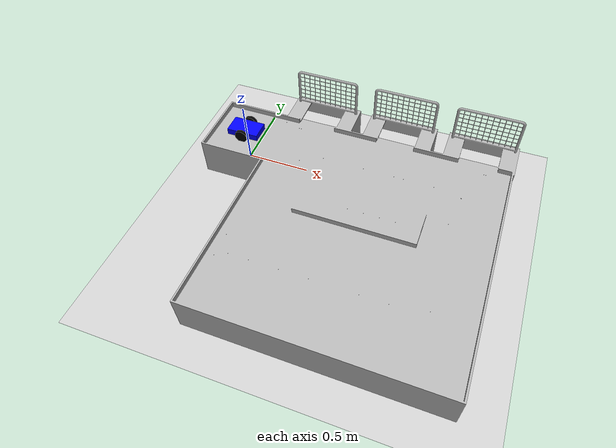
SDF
<?xml version="1.0" ?>
<!-- シンプルな差動二輪ロボットのSDFファイル -->
<sdf version="1.8">
    <world name="simple_world">
        <!-- 物理シミュレーションの設定 -->
        <physics name="1ms" type="ode">  <!-- Changed type from "ignored" to "ode" -->
            <max_step_size>0.001</max_step_size>    <!-- シミュレーションの時間刻み -->
            <real_time_factor>1.0</real_time_factor>    <!-- リアルタイム係数 -->
        </physics>

        <!-- 必要なプラグインの読み込み -->
        <plugin filename="gz-sim-physics-system" name="gz::sim::systems::Physics"/>
        <plugin filename="gz-sim-scene-broadcaster-system" name="gz::sim::systems::SceneBroadcaster"/>
        <plugin filename="gz-sim-user-commands-system" name="gz::sim::systems::UserCommands"/>

        <!-- 太陽光源の設定 -->
        <light type="directional" name="sun">
            <cast_shadows>true</cast_shadows>
            <pose>0 0 10 0 0 0</pose>    <!-- 光源の位置 -->
            <diffuse>0.8 0.8 0.8 1</diffuse>    <!-- 拡散光 -->
            <specular>0.2 0.2 0.2 1</specular>    <!-- 鏡面光 -->
            <attenuation>
                <range>1000</range>
                <constant>0.9</constant>
                <linear>0.01</linear>
                <quadratic>0.001</quadratic>
            </attenuation>
            <direction>-0.5 0.1 -0.9</direction>    <!-- 光の方向 -->
        </light>

        <!-- 地面モデルの設定 -->
        <model name="ground_plane">
            <static>true</static>
            <link name="link">
                <collision name="collision">
                    <geometry>
                        <plane>
                            <normal>0 0 1</normal>
                        </plane>
                    </geometry>
                </collision>
                <visual name="visual">
                    <geometry>
                        <plane>
                            <normal>0 0 1</normal>
                            <size>100 100</size>    <!-- 地面の大きさ -->
                        </plane>
                    </geometry>
                    <material>
                        <ambient>0.8 0.8 0.8 1</ambient>
                        <diffuse>0.8 0.8 0.8 1</diffuse>
                        <specular>0.8 0.8 0.8 1</specular>
                    </material>
                </visual>
            </link>
        </model>

        <!-- カスタムオブジェクトの設定 -->
        <model name='inrof_field'>
        <pose>2.050 0.250 0.255 0 0 3.14</pose> <!-- Adjust position and orientation -->
        <link name='custom_object_link'>
            <collision name='custom_object_collision'>
            <geometry>
                <mesh>
                <uri>file:///home/hak/ros2_ws/src/inrof/meshes/inrof_field.stl</uri>
                <scale>1 1 1</scale> <!-- Adjust scale if needed -->
                </mesh>
            </geometry>
            </collision>
            <visual name='custom_object_visual'>
            <geometry>
                <mesh>
                <uri>file:///home/hak/ros2_ws/src/inrof/meshes/inrof_field.stl</uri>
                <scale>1 1 1</scale> <!-- Adjust scale if needed -->
                </mesh>
            </geometry>
            <material>
                <ambient>0.5 0.5 0.5 1</ambient>
                <diffuse>0.7 0.7 0.7 1</diffuse>
                <specular>0.9 0.9 0.9 1</specular>
            </material>
            </visual>
            <pose>0 0 0 0 0 0</pose>
            <enable_wind>false</enable_wind>
        </link>
        <static>true</static>
        <self_collide>false</self_collide>
        </model>

        <!-- ロボット本体の設定 -->
        <model name="simple_robot">
            <pose>0 0 0.3 0 0 0</pose>    <!-- ロボットの初期位置 -->

            <!-- ベースリンク（本体） -->
            <link name="base_link">
                <inertial>
                    <mass>1.0</mass>    <!-- 本体の質量 -->
                    <inertia>    <!-- 慣性モーメント -->
                        <ixx>0.0835</ixx>
                        <ixy>0</ixy>
                        <ixz>0</ixz>
                        <iyy>0.1209</iyy>
                        <iyz>0</iyz>
                        <izz>0.1209</izz>
                    </inertia>
                </inertial>
                <visual name="visual">
                    <geometry>
                        <box>
                            <size>0.25 0.15 0.05</size>    <!-- 本体のサイズ -->
                        </box>
                    </geometry>
                    <material>
                        <ambient>0 0 1 1</ambient>    <!-- 青色 -->
                        <diffuse>0 0 1 1</diffuse>
                        <specular>0 0 1 1</specular>
                    </material>
                </visual>
                <collision name="collision">
                    <geometry>
                        <box>
                            <size>0.25 0.15 0.05</size>
                        </box>
                    </geometry>
                </collision>
            </link>

            <!-- 左車輪 -->
            <link name="left_wheel">
                <pose relative_to="base_link">0 0.0875 0 -1.5708 0 0</pose>    <!-- 左車輪の位置 -->
                <inertial>
                    <mass>0.5</mass>    <!-- 車輪の質量 -->
                    <inertia>
                        <ixx>0.00125</ixx>
                        <ixy>0</ixy>
                        <ixz>0</ixz>
                        <iyy>0.00125</iyy>
                        <iyz>0</iyz>
                        <izz>0.002</izz>
                    </inertia>
                </inertial>
                <visual name="visual">
                    <geometry>
                        <cylinder>
                            <radius>0.05</radius>    <!-- 車輪の半径 -->
                            <length>0.025</length>    <!-- 車輪の幅 -->
                        </cylinder>
                    </geometry>
                    <material>
                        <ambient>0 0 0 1</ambient>    <!-- 黒色 -->
                        <diffuse>0 0 0 1</diffuse>
                        <specular>0 0 0 1</specular>
                    </material>
                </visual>
                <collision name="collision">
                    <geometry>
                        <cylinder>
                            <radius>0.05</radius>
                            <length>0.025</length>    <!-- 車輪の幅 -->
                        </cylinder>
                    </geometry>
                </collision>
            </link>

            <!-- 右車輪（左車輪と同様の設定） -->
            <link name="right_wheel">
                <pose relative_to="base_link">0 -0.0875 0 -1.5708 0 0</pose>    <!-- 右車輪の位置 -->
                <inertial>
                    <mass>0.5</mass>
                    <inertia>
                        <ixx>0.00125</ixx>
                        <ixy>0</ixy>
                        <ixz>0</ixz>
                        <iyy>0.00125</iyy>
                        <iyz>0</iyz>
                        <izz>0.002</izz>
                    </inertia>
                </inertial>
                <visual name="visual">
                    <geometry>
                        <cylinder>
                            <radius>0.05</radius>
                            <length>0.025</length>    <!-- 車輪の幅 -->
                        </cylinder>
                    </geometry>
                    <material>
                        <ambient>0 0 0 1</ambient>    <!-- 黒色 -->
                        <diffuse>0 0 0 1</diffuse>
                        <specular>0 0 0 1</specular>
                    </material>
                </visual>
                <collision name="collision">
                    <geometry>
                        <cylinder>
                            <radius>0.05</radius>
                            <length>0.025</length>    <!-- 車輪の幅 -->
                        </cylinder>
                    </geometry>
                </collision>
            </link>

            <!-- キャスター（補助輪） -->
            <link name="caster">
                <pose relative_to="base_link">-0.1 0 -0.025 0 0 0</pose>    <!-- キャスターの位置 -->
                <inertial>
                    <mass>0.1</mass>    <!-- キャスターの質量 -->
                    <inertia>
                        <ixx>0.0001</ixx>
                        <ixy>0</ixy>
                        <ixz>0</ixz>
                        <iyy>0.0001</iyy>
                        <iyz>0</iyz>
                        <izz>0.0001</izz>
                    </inertia>
                </inertial>
                <collision name="collision">
                    <geometry>
                        <sphere>
                            <radius>0.025</radius>    <!-- キャスターの半径 -->
                        </sphere>
                    </geometry>
                </collision>
                <visual name="visual">
                    <geometry>
                        <sphere>
                            <radius>0.025</radius>
                        </sphere>
                    </geometry>
                    <material>
                        <ambient>0.8 0.8 0.8 1</ambient>    <!-- グレー色 -->
                        <diffuse>0.8 0.8 0.8 1</diffuse>
                        <specular>0.8 0.8 0.8 1</specular>
                    </material>
                </visual>
            </link>

            <!-- 左車輪のジョイント -->
            <joint name="left_wheel_joint" type="revolute">
                <parent>base_link</parent>
                <child>left_wheel</child>
                <axis>
                    <xyz>0 0 1</xyz>    <!-- 回転軸 -->
                    <limit>
                        <lower>-1.79769e+308</lower>    <!-- 回転制限なし -->
                        <upper>1.79769e+308</upper>
                    </limit>
                </axis>
            </joint>

            <!-- 右車輪のジョイント -->
            <joint name="right_wheel_joint" type="revolute">
                <parent>base_link</parent>
                <child>right_wheel</child>
                <axis>
                    <xyz>0 0 1</xyz>
                    <limit>
                        <lower>-1.79769e+308</lower>
                        <upper>1.79769e+308</upper>
                    </limit>
                </axis>
            </joint>

            <!-- キャスターのジョイント（固定） -->
            <joint name="caster_joint" type="fixed">
                <parent>base_link</parent>
                <child>caster</child>
            </joint>

            <!-- 2Dライダー用リンクの追加 -->
            <link name="lidar_link">
                <!-- base_linkより低い位置に配置（例: -0.15 m） -->
                <pose>0 0 -0.15 0 0 0</pose>
                <sensor name="lidar_sensor" type="ray">
                    <pose>0 0 0 0 0 0</pose>
                    <visualize>true</visualize>
                    <update_rate>20</update_rate>
                    <ray>
                        <scan>
                            <horizontal>
                                <samples>360</samples>
                                <resolution>1</resolution>
                                <min_angle>-1.5708</min_angle>
                                <max_angle>1.5708</max_angle>
                            </horizontal>
                        </scan>
                        <range>
                            <min>0.0</min>
                            <max>5.0</max>
                            <resolution>0.01</resolution>
                        </range>
                        <!-- ノイズ設定（必要に応じて） -->
                        <noise>
                            <type>gaussian</type>
                            <mean>0.0</mean>
                            <stddev>0.001</stddev>
                        </noise>
                    </ray>
                    <!-- ここでGazebo ROS2レーザ―センサプラグインを追加 -->
                    <plugin name="ros2_laser_plugin" filename="libgazebo_ros2_laser.so">
                        <topicName>/scan</topicName>
                        <frameName>lidar_link</frameName>
                        <!-- 必要に応じて他のパラメータ（例: update_rate, range_min, range_max）を指定 -->
                    </plugin>
                </sensor>
            </link>

            <!-- ライダーのジョイント（固定） -->
            <joint name="lidar_joint" type="fixed">
                <parent>base_link</parent>
                <child>lidar_link</child>
                <pose>0 0 -0.15 0 0 0</pose>
            </joint>

            <!-- 差動駆動システムのプラグイン -->
            <plugin filename="gz-sim-diff-drive-system" name="gz::sim::systems::DiffDrive">
                <topic>cmd_vel</topic>    <!-- 速度指令のトピック名 -->
                <left_joint>left_wheel_joint</left_joint>    <!-- 左車輪のジョイント名 -->
                <right_joint>right_wheel_joint</right_joint>    <!-- 右車輪のジョイント名 -->
                <wheel_separation>0.175</wheel_separation>    <!-- 車輪間距離 -->
                <wheel_radius>0.05</wheel_radius>    <!-- 車輪半径 -->
                <odom_publish_frequency>50</odom_publish_frequency>    <!-- Odometry公開の頻度 -->
            </plugin>
        </model>
    </world>
</sdf>
